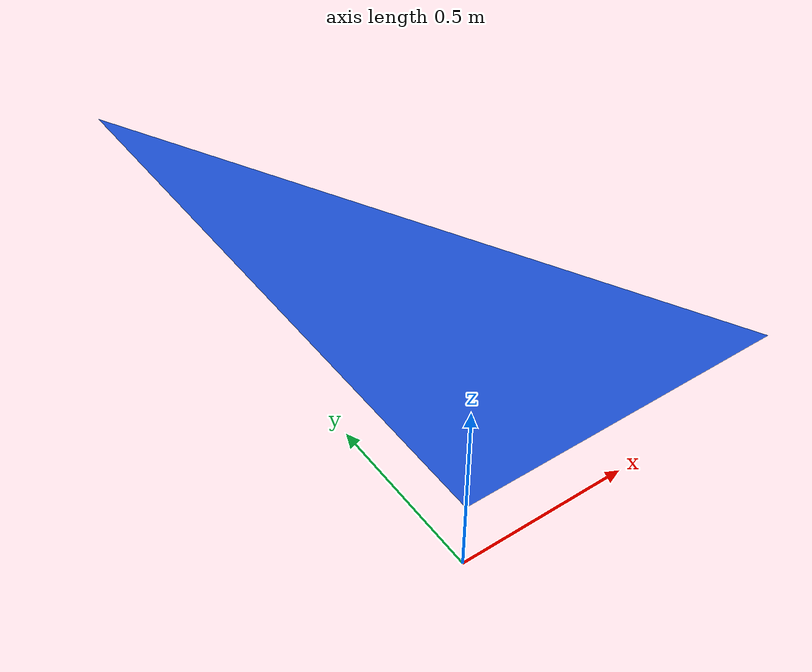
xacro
<?xml version="1.0"?>
<robot name="${prefix}_robot" xmlns:xacro="http://www.ros.org/wiki/xacro">
  <xacro:arg name="prefix" default="demo"/>
  <xacro:include filename="$(find demo_robot)/urdf/materials.xacro"/>
  <xacro:macro name="mesh_link" params="name mesh">
    <link name="${name}">
      <inertial>
        <origin xyz="0 0 0.1" rpy="0 0 0"/>
        <mass value="1.5"/>
        <inertia ixx="0.2" ixy="0" ixz="0" iyy="0.3" iyz="0" izz="0.4"/>
      </inertial>
      <visual>
        <origin xyz="0 0 0.2" rpy="0 0 0"/>
        <geometry>
          <mesh filename="${mesh}" scale="1 2 1"/>
        </geometry>
        <material name="body_blue"/>
      </visual>
      <collision>
        <geometry><box size="0.5 0.5 0.5"/></geometry>
      </collision>
    </link>
  </xacro:macro>
  <xacro:mesh_link name="base" mesh="package://demo_robot/meshes/triangle.stl"/>
</robot>

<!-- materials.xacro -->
<robot name="materials" xmlns:xacro="http://www.ros.org/wiki/xacro">
  <material name="body_blue">
    <color rgba="0.1 0.3 0.8 1"/>
  </material>
</robot>
